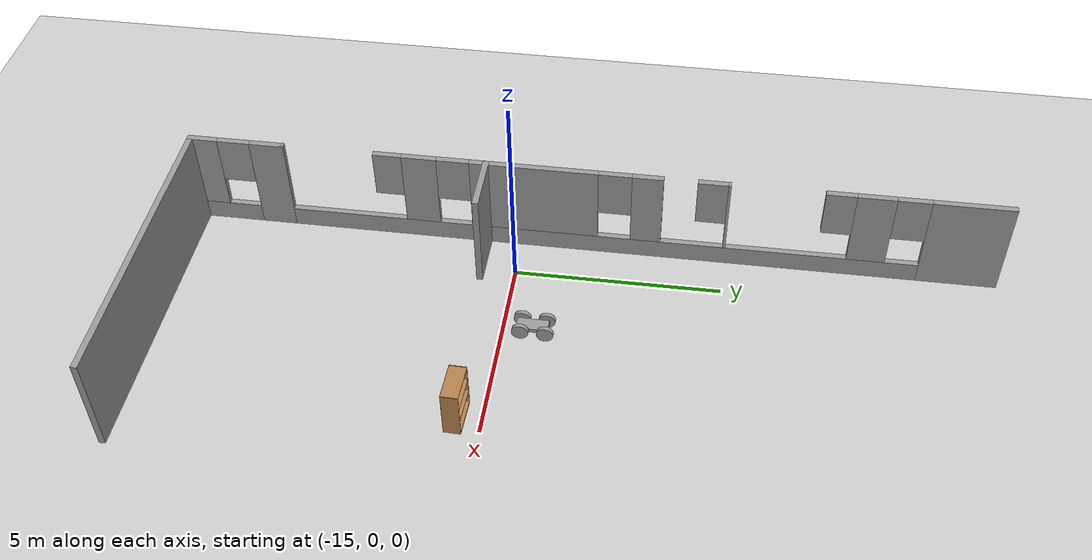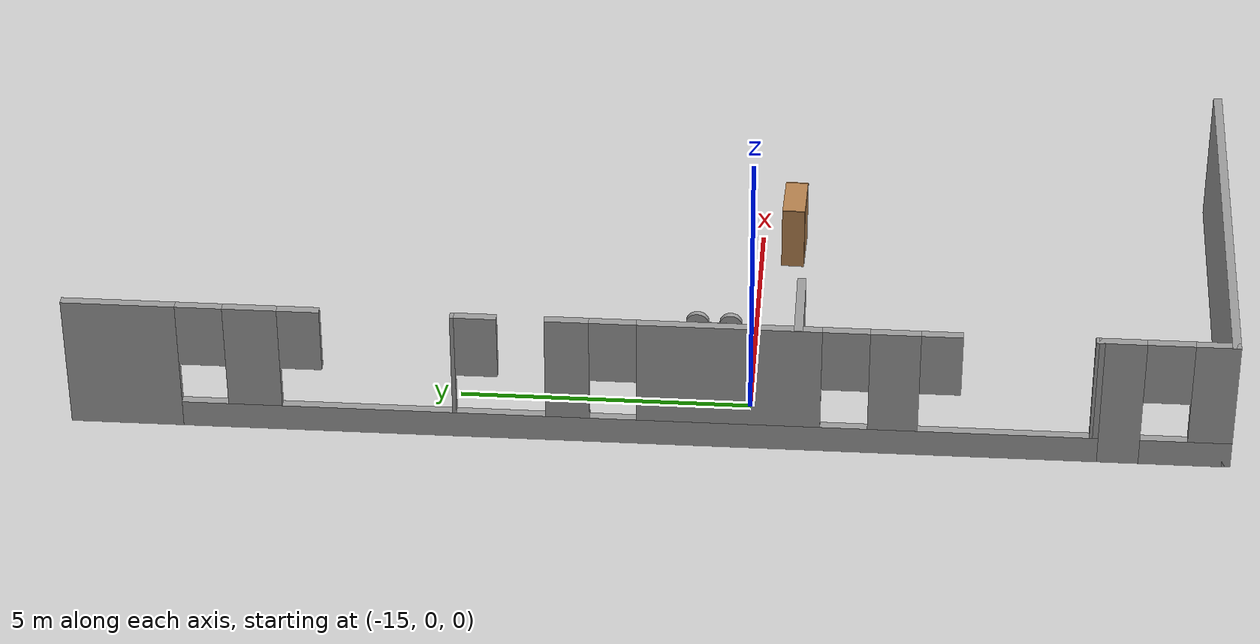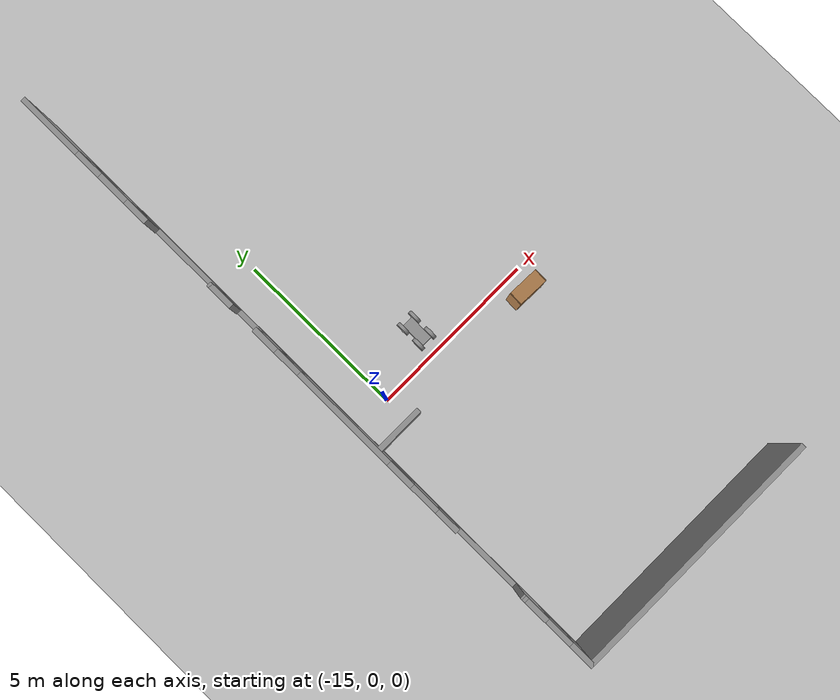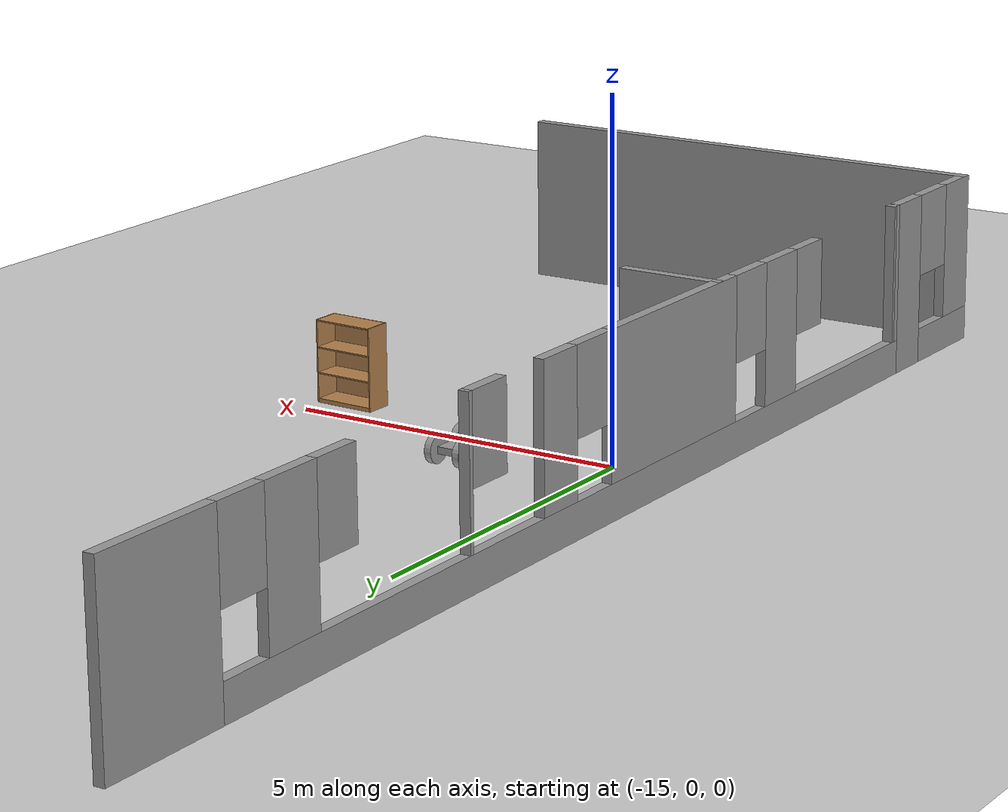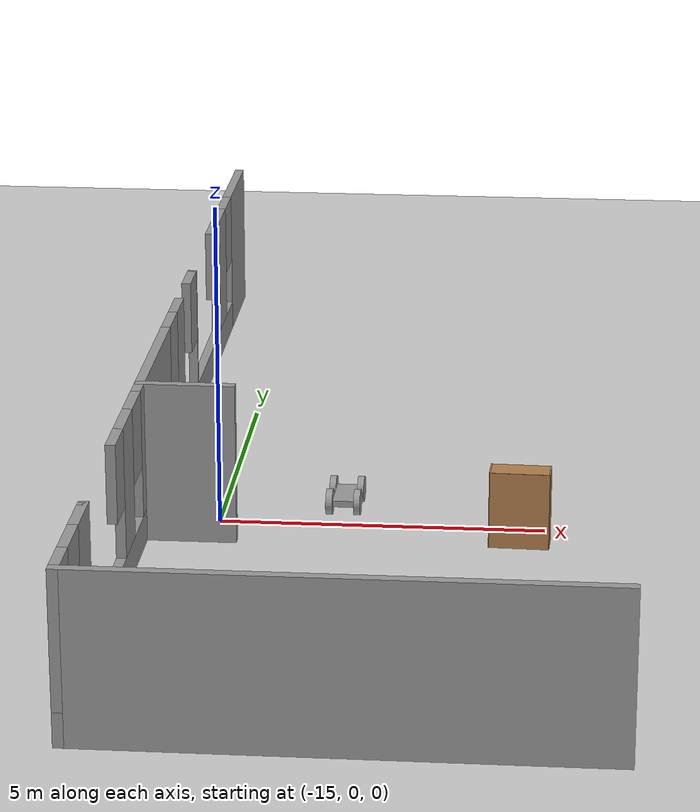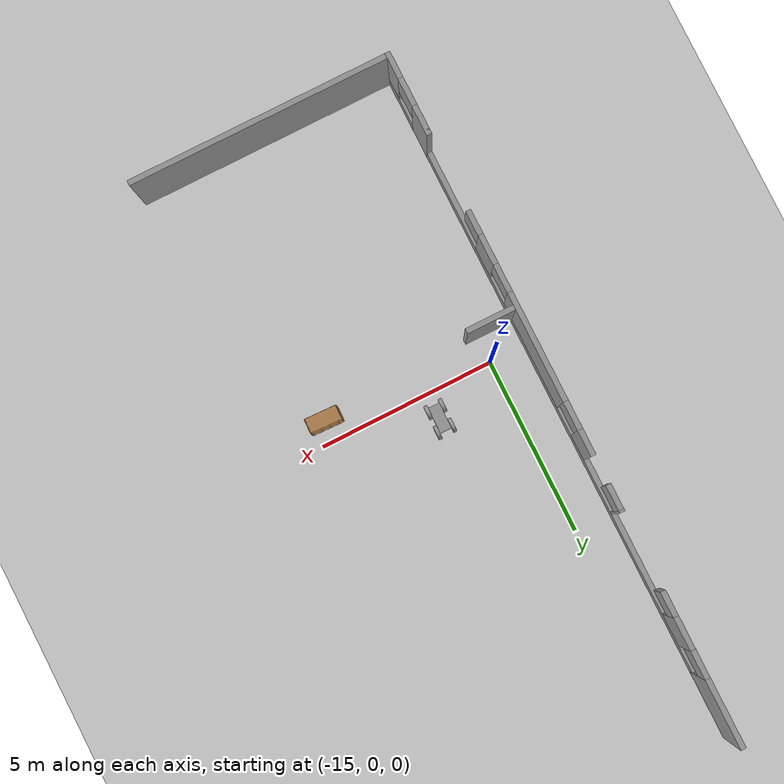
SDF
<sdf version="1.6">
 <world name="default">
  <model name="ground_plane">
   <static>1</static>
   <link name="link">
    <collision name="collision">
     <geometry><plane><normal>0 0 1</normal><size>100 100</size></plane></geometry>
     <surface>
      <contact><collide_bitmask>65535</collide_bitmask></contact>
      <friction><ode><mu>100</mu><mu2>50</mu2></ode></friction>
     </surface>
    </collision>
    <visual name="visual">
     <cast_shadows>0</cast_shadows>
     <geometry><plane><normal>0 0 1</normal><size>100 100</size></plane></geometry>
     <material>
      <script><uri>file://media/materials/scripts/gazebo.material</uri><name>Gazebo/Grey</name></script>
     </material>
    </visual>
   </link>
  </model>
  <model name="spruce1st">
   <pose>-3.08285 0.81707 0 0 -0 0</pose>
   <link name="Wall_116">
    <collision name="Wall_116_Collision">
     <geometry><box><size>1.5 0.15 2.5</size></box></geometry>
     <pose>0 0 1.25 0 -0 0</pose>
    </collision>
    <visual name="Wall_116_Visual">
     <pose>0 0 1.25 0 -0 0</pose>
     <geometry><box><size>1.5 0.15 2.5</size></box></geometry>
     <material>
      <script><uri>file://media/materials/scripts/gazebo.material</uri><name>Gazebo/Grey</name></script>
      <ambient>1 1 1 1</ambient>
     </material>
     <meta><layer>0</layer></meta>
    </visual>
    <pose>-12.3106 -1.63437 0 0 -0 0</pose>
   </link>
   <link name="Wall_124">
    <collision name="Wall_124_Collision">
     <geometry><box><size>7.5 0.15 2.5</size></box></geometry>
     <pose>0 0 1.25 0 -0 0</pose>
    </collision>
    <visual name="Wall_124_Visual">
     <pose>0 0 1.25 0 -0 0</pose>
     <geometry><box><size>7.5 0.15 2.5</size></box></geometry>
     <material>
      <script><uri>file://media/materials/scripts/gazebo.material</uri><name>Gazebo/Grey</name></script>
      <ambient>1 1 1 1</ambient>
     </material>
     <meta><layer>0</layer></meta>
    </visual>
    <pose>-9.3221 -8.89846 0 0 -0 0</pose>
   </link>
   <link name="Wall_37">
    <pose>-12.9971 2.0263 0 0 0 -1.5708</pose>
    <visual name="Wall_37_Visual_0">
     <pose>-7.78322 0 1.25 0 -0 0</pose>
     <geometry><box><size>1.93356 0.15 2.5</size></box></geometry>
     <material>
      <script><uri>file://media/materials/scripts/gazebo.material</uri><name>Gazebo/Grey</name></script>
      <ambient>1 1 1 1</ambient>
     </material>
     <meta><layer>0</layer></meta>
    </visual>
    <collision name="Wall_37_Collision_0">
     <geometry><box><size>1.93356 0.15 2.5</size></box></geometry>
     <pose>-7.78322 0 1.25 0 -0 0</pose>
    </collision>
    <visual name="Wall_37_Visual_1">
     <pose>0.966783 0 0.25 0 -0 0</pose>
     <geometry><box><size>15.5664 0.15 0.5</size></box></geometry>
     <material>
      <script><uri>file://media/materials/scripts/gazebo.material</uri><name>Gazebo/Grey</name></script>
      <ambient>1 1 1 1</ambient>
     </material>
     <meta><layer>0</layer></meta>
    </visual>
    <collision name="Wall_37_Collision_1">
     <geometry><box><size>15.5664 0.15 0.5</size></box></geometry>
     <pose>0.966783 0 0.25 0 -0 0</pose>
    </collision>
    <visual name="Wall_37_Visual_2">
     <pose>-5.55552 0 1.5 0 -0 0</pose>
     <geometry><box><size>0.921827 0.15 2</size></box></geometry>
     <material>
      <script><uri>file://media/materials/scripts/gazebo.material</uri><name>Gazebo/Grey</name></script>
      <ambient>1 1 1 1</ambient>
     </material>
     <meta><layer>0</layer></meta>
    </visual>
    <collision name="Wall_37_Collision_2">
     <geometry><box><size>0.921827 0.15 2</size></box></geometry>
     <pose>-5.55552 0 1.5 0 -0 0</pose>
    </collision>
    <visual name="Wall_37_Visual_3">
     <pose>-2.14673 0 1.5 0 -0 0</pose>
     <geometry><box><size>0.068166 0.15 2</size></box></geometry>
     <material>
      <script><uri>file://media/materials/scripts/gazebo.material</uri><name>Gazebo/Grey</name></script>
      <ambient>1 1 1 1</ambient>
     </material>
     <meta><layer>0</layer></meta>
    </visual>
    <collision name="Wall_37_Collision_3">
     <geometry><box><size>0.068166 0.15 2</size></box></geometry>
     <pose>-2.14673 0 1.5 0 -0 0</pose>
    </collision>
    <visual name="Wall_37_Visual_4">
     <pose>-0.221666 0 1.5 0 -0 0</pose>
     <geometry><box><size>0.7476 0.15 2</size></box></geometry>
     <material>
      <script><uri>file://media/materials/scripts/gazebo.material</uri><name>Gazebo/Grey</name></script>
      <ambient>1 1 1 1</ambient>
     </material>
     <meta><layer>0</layer></meta>
    </visual>
    <collision name="Wall_37_Collision_4">
     <geometry><box><size>0.7476 0.15 2</size></box></geometry>
     <pose>-0.221666 0 1.5 0 -0 0</pose>
    </collision>
    <visual name="Wall_37_Visual_5">
     <pose>2.50576 0 1.5 0 -0 0</pose>
     <geometry><box><size>3.10725 0.15 2</size></box></geometry>
     <material>
      <script><uri>file://media/materials/scripts/gazebo.material</uri><name>Gazebo/Grey</name></script>
      <ambient>1 1 1 1</ambient>
     </material>
     <meta><layer>0</layer></meta>
    </visual>
    <collision name="Wall_37_Collision_5">
     <geometry><box><size>3.10725 0.15 2</size></box></geometry>
     <pose>2.50576 0 1.5 0 -0 0</pose>
    </collision>
    <visual name="Wall_37_Visual_6">
     <pose>5.28306 0 1.5 0 -0 0</pose>
     <geometry><box><size>0.847345 0.15 2</size></box></geometry>
     <material>
      <script><uri>file://media/materials/scripts/gazebo.material</uri><name>Gazebo/Grey</name></script>
      <ambient>1 1 1 1</ambient>
     </material>
     <meta><layer>0</layer></meta>
    </visual>
    <collision name="Wall_37_Collision_6">
     <geometry><box><size>0.847345 0.15 2</size></box></geometry>
     <pose>5.28306 0 1.5 0 -0 0</pose>
    </collision>
    <visual name="Wall_37_Visual_7">
     <pose>8.70164 0 1.5 0 -0 0</pose>
     <geometry><box><size>0.096727 0.15 2</size></box></geometry>
     <material>
      <script><uri>file://media/materials/scripts/gazebo.material</uri><name>Gazebo/Grey</name></script>
      <ambient>1 1 1 1</ambient>
     </material>
     <meta><layer>0</layer></meta>
    </visual>
    <collision name="Wall_37_Collision_7">
     <geometry><box><size>0.096727 0.15 2</size></box></geometry>
     <pose>8.70164 0 1.5 0 -0 0</pose>
    </collision>
    <visual name="Wall_37_Visual_8">
     <pose>-6.41643 0 1.9 0 -0 0</pose>
     <geometry><box><size>0.8 0.15 1.2</size></box></geometry>
     <material>
      <script><uri>file://media/materials/scripts/gazebo.material</uri><name>Gazebo/Grey</name></script>
      <ambient>1 1 1 1</ambient>
     </material>
     <meta><layer>0</layer></meta>
    </visual>
    <collision name="Wall_37_Collision_8">
     <geometry><box><size>0.8 0.15 1.2</size></box></geometry>
     <pose>-6.41643 0 1.9 0 -0 0</pose>
    </collision>
    <visual name="Wall_37_Visual_9">
     <pose>-4.73602 0 1.9 0 -0 0</pose>
     <geometry><box><size>0.71718 0.15 1.2</size></box></geometry>
     <material>
      <script><uri>file://media/materials/scripts/gazebo.material</uri><name>Gazebo/Grey</name></script>
      <ambient>1 1 1 1</ambient>
     </material>
     <meta><layer>0</layer></meta>
    </visual>
    <collision name="Wall_37_Collision_9">
     <geometry><box><size>0.71718 0.15 1.2</size></box></geometry>
     <pose>-4.73602 0 1.9 0 -0 0</pose>
    </collision>
    <visual name="Wall_37_Visual_10">
     <pose>-1.75406 0 1.9 0 -0 0</pose>
     <geometry><box><size>0.717181 0.15 1.2</size></box></geometry>
     <material>
      <script><uri>file://media/materials/scripts/gazebo.material</uri><name>Gazebo/Grey</name></script>
      <ambient>1 1 1 1</ambient>
     </material>
     <meta><layer>0</layer></meta>
    </visual>
    <collision name="Wall_37_Collision_10">
     <geometry><box><size>0.717181 0.15 1.2</size></box></geometry>
     <pose>-1.75406 0 1.9 0 -0 0</pose>
    </collision>
    <visual name="Wall_37_Visual_11">
     <pose>0.552134 0 1.9 0 -0 0</pose>
     <geometry><box><size>0.8 0.15 1.2</size></box></geometry>
     <material>
      <script><uri>file://media/materials/scripts/gazebo.material</uri><name>Gazebo/Grey</name></script>
      <ambient>1 1 1 1</ambient>
     </material>
     <meta><layer>0</layer></meta>
    </visual>
    <collision name="Wall_37_Collision_11">
     <geometry><box><size>0.8 0.15 1.2</size></box></geometry>
     <pose>0.552134 0 1.9 0 -0 0</pose>
    </collision>
    <visual name="Wall_37_Visual_12">
     <pose>4.45939 0 1.9 0 -0 0</pose>
     <geometry><box><size>0.8 0.15 1.2</size></box></geometry>
     <material>
      <script><uri>file://media/materials/scripts/gazebo.material</uri><name>Gazebo/Grey</name></script>
      <ambient>1 1 1 1</ambient>
     </material>
     <meta><layer>0</layer></meta>
    </visual>
    <collision name="Wall_37_Collision_12">
     <geometry><box><size>0.8 0.15 1.2</size></box></geometry>
     <pose>4.45939 0 1.9 0 -0 0</pose>
    </collision>
    <visual name="Wall_37_Visual_13">
     <pose>6.05617 0 1.9 0 -0 0</pose>
     <geometry><box><size>0.698874 0.15 1.2</size></box></geometry>
     <material>
      <script><uri>file://media/materials/scripts/gazebo.material</uri><name>Gazebo/Grey</name></script>
      <ambient>1 1 1 1</ambient>
     </material>
     <meta><layer>0</layer></meta>
    </visual>
    <collision name="Wall_37_Collision_13">
     <geometry><box><size>0.698874 0.15 1.2</size></box></geometry>
     <pose>6.05617 0 1.9 0 -0 0</pose>
    </collision>
   </link>
   <link name="Wall_38">
    <pose>-12.9971 -7.77358 0 0 0 -1.5708</pose>
    <visual name="Wall_38_Visual_0">
     <pose>-0.774668 0 1.25 0 -0 0</pose>
     <geometry><box><size>0.850976 0.15 2.5</size></box></geometry>
     <material>
      <script><uri>file://media/materials/scripts/gazebo.material</uri><name>Gazebo/Grey</name></script>
      <ambient>1 1 1 1</ambient>
     </material>
     <meta><layer>0</layer></meta>
    </visual>
    <collision name="Wall_38_Collision_0">
     <geometry><box><size>0.850976 0.15 2.5</size></box></geometry>
     <pose>-0.774668 0 1.25 0 -0 0</pose>
    </collision>
    <visual name="Wall_38_Visual_1">
     <pose>0.425488 0 0.25 0 -0 0</pose>
     <geometry><box><size>1.54934 0.15 0.5</size></box></geometry>
     <material>
      <script><uri>file://media/materials/scripts/gazebo.material</uri><name>Gazebo/Grey</name></script>
      <ambient>1 1 1 1</ambient>
     </material>
     <meta><layer>0</layer></meta>
    </visual>
    <collision name="Wall_38_Collision_1">
     <geometry><box><size>1.54934 0.15 0.5</size></box></geometry>
     <pose>0.425488 0 0.25 0 -0 0</pose>
    </collision>
    <visual name="Wall_38_Visual_2">
     <pose>0.825488 0 1.5 0 -0 0</pose>
     <geometry><box><size>0.749337 0.15 2</size></box></geometry>
     <material>
      <script><uri>file://media/materials/scripts/gazebo.material</uri><name>Gazebo/Grey</name></script>
      <ambient>1 1 1 1</ambient>
     </material>
     <meta><layer>0</layer></meta>
    </visual>
    <collision name="Wall_38_Collision_2">
     <geometry><box><size>0.749337 0.15 2</size></box></geometry>
     <pose>0.825488 0 1.5 0 -0 0</pose>
    </collision>
    <visual name="Wall_38_Visual_3">
     <pose>0.050819 0 1.9 0 -0 0</pose>
     <geometry><box><size>0.8 0.15 1.2</size></box></geometry>
     <material>
      <script><uri>file://media/materials/scripts/gazebo.material</uri><name>Gazebo/Grey</name></script>
      <ambient>1 1 1 1</ambient>
     </material>
     <meta><layer>0</layer></meta>
    </visual>
    <collision name="Wall_38_Collision_3">
     <geometry><box><size>0.8 0.15 1.2</size></box></geometry>
     <pose>0.050819 0 1.9 0 -0 0</pose>
    </collision>
   </link>
   <static>1</static>
  </model>
  <model name="bookshelf_clone_3">
   <static>1</static>
   <link name="link">
    <inertial><mass>1</mass></inertial>
    <collision name="back">
     <pose>0 0.005 0.6 0 -0 0</pose>
     <geometry><box><size>0.9 0.01 1.2</size></box></geometry>
    </collision>
    <visual name="visual1">
     <pose>0 0.005 0.6 0 -0 0</pose>
     <geometry><box><size>0.9 0.01 1.2</size></box></geometry>
     <material>
      <script><uri>file://media/materials/scripts/gazebo.material</uri><name>Gazebo/Wood</name></script>
     </material>
    </visual>
    <collision name="left_side">
     <pose>0.45 -0.195 0.6 0 -0 0</pose>
     <geometry><box><size>0.02 0.4 1.2</size></box></geometry>
    </collision>
    <visual name="visual2">
     <pose>0.45 -0.195 0.6 0 -0 0</pose>
     <geometry><box><size>0.02 0.4 1.2</size></box></geometry>
     <material>
      <script><uri>file://media/materials/scripts/gazebo.material</uri><name>Gazebo/Wood</name></script>
     </material>
    </visual>
    <collision name="right_side">
     <pose>-0.45 -0.195 0.6 0 -0 0</pose>
     <geometry><box><size>0.02 0.4 1.2</size></box></geometry>
    </collision>
    <visual name="visual3">
     <pose>-0.45 -0.195 0.6 0 -0 0</pose>
     <geometry><box><size>0.02 0.4 1.2</size></box></geometry>
     <material>
      <script><uri>file://media/materials/scripts/gazebo.material</uri><name>Gazebo/Wood</name></script>
     </material>
    </visual>
    <collision name="bottom">
     <pose>0 -0.195 0.03 0 -0 0</pose>
     <geometry><box><size>0.88 0.4 0.06</size></box></geometry>
    </collision>
    <visual name="visual4">
     <pose>0 -0.195 0.03 0 -0 0</pose>
     <geometry><box><size>0.88 0.4 0.06</size></box></geometry>
     <material>
      <script><uri>file://media/materials/scripts/gazebo.material</uri><name>Gazebo/Wood</name></script>
     </material>
    </visual>
    <collision name="top">
     <pose>0 -0.195 1.19 0 -0 0</pose>
     <geometry><box><size>0.88 0.4 0.02</size></box></geometry>
    </collision>
    <visual name="visual5">
     <pose>0 -0.195 1.19 0 -0 0</pose>
     <geometry><box><size>0.88 0.4 0.02</size></box></geometry>
     <material>
      <script><uri>file://media/materials/scripts/gazebo.material</uri><name>Gazebo/Wood</name></script>
     </material>
    </visual>
    <collision name="low_shelf">
     <pose>0 -0.195 0.43 0 -0 0</pose>
     <geometry><box><size>0.88 0.4 0.02</size></box></geometry>
    </collision>
    <visual name="visual6">
     <pose>0 -0.195 0.43 0 -0 0</pose>
     <geometry><box><size>0.88 0.4 0.02</size></box></geometry>
     <material>
      <script><uri>file://media/materials/scripts/gazebo.material</uri><name>Gazebo/Wood</name></script>
     </material>
    </visual>
    <collision name="high_shelf">
     <pose>0 -0.195 0.8 0 -0 0</pose>
     <geometry><box><size>0.88 0.4 0.02</size></box></geometry>
    </collision>
    <visual name="visual7">
     <pose>0 -0.195 0.8 0 -0 0</pose>
     <geometry><box><size>0.88 0.4 0.02</size></box></geometry>
     <material>
      <script><uri>file://media/materials/scripts/gazebo.material</uri><name>Gazebo/Wood</name></script>
     </material>
    </visual>
   </link>
   <pose>-10.3801 -0.761902 0 0 -0 3.10867</pose>
  </model>
  <model name="little_car">
   <link name="link_0">
    <pose>-0.000514 -0.021001 0 0 -0 0</pose>
    <inertial>
     <mass>1</mass>
     <inertia>
      <ixx>0.166667</ixx>
      <ixy>0</ixy>
      <ixz>0</ixz>
      <iyy>0.166667</iyy>
      <iyz>0</iyz>
      <izz>0.166667</izz>
     </inertia>
    </inertial>
    <visual name="visual">
     <geometry><box><size>0.33 0.75 0.1</size></box></geometry>
     <material>
      <lighting>1</lighting>
      <script><uri>file://media/materials/scripts/gazebo.material</uri><name>Gazebo/Grey</name></script>
      <shader type="pixel"><normal_map>__default__</normal_map></shader>
      <ambient>0.3 0.3 0.3 1</ambient>
      <diffuse>0.7 0.7 0.7 1</diffuse>
      <specular>0.01 0.01 0.01 1</specular>
      <emissive>0 0 0 1</emissive>
     </material>
    </visual>
    <collision name="collision">
     <geometry><box><size>0.33 0.75 0.1</size></box></geometry>
     <surface>
      <friction>
       <ode><mu>1</mu><mu2>1</mu2><fdir1>0 0 0</fdir1><slip1>0</slip1><slip2>0</slip2></ode>
       <torsional>
        <coefficient>1</coefficient>
        <patch_radius>0</patch_radius>
        <surface_radius>0</surface_radius>
        <use_patch_radius>1</use_patch_radius>
        <ode><slip>0</slip></ode>
       </torsional>
      </friction>
      <bounce><restitution_coefficient>0</restitution_coefficient><threshold>1e+06</threshold></bounce>
      <contact>
       <collide_without_contact>0</collide_without_contact>
       <collide_without_contact_bitmask>1</collide_without_contact_bitmask>
       <collide_bitmask>1</collide_bitmask>
       <ode>
        <soft_cfm>0</soft_cfm>
        <soft_erp>0.2</soft_erp>
        <kp>1e+13</kp>
        <kd>1</kd>
        <max_vel>0.01</max_vel>
        <min_depth>0</min_depth>
       </ode>
       <bullet>
        <split_impulse>1</split_impulse>
        <split_impulse_penetration_threshold>-0.01</split_impulse_penetration_threshold>
        <soft_cfm>0</soft_cfm>
        <soft_erp>0.2</soft_erp>
        <kp>1e+13</kp>
        <kd>1</kd>
       </bullet>
      </contact>
     </surface>
    </collision>
   </link>
   <link name="link_1">
    <pose>-0.215576 -0.292883 0 0 -0 0</pose>
    <inertial>
     <mass>1</mass>
     <inertia><ixx>0.145833</ixx><ixy>0</ixy><ixz>0</ixz><iyy>0.145833</iyy><iyz>0</iyz><izz>0.125</izz></inertia>
    </inertial>
    <visual name="visual">
     <pose>0 0 0 -1.5708 1.57079 -1.5708</pose>
     <geometry><cylinder><radius>0.2</radius><length>0.1</length></cylinder></geometry>
     <material>
      <lighting>1</lighting>
      <script><uri>file://media/materials/scripts/gazebo.material</uri><name>Gazebo/Grey</name></script>
      <shader type="pixel"><normal_map>__default__</normal_map></shader>
      <ambient>0.3 0.3 0.3 1</ambient>
      <diffuse>0.7 0.7 0.7 1</diffuse>
      <specular>0.01 0.01 0.01 1</specular>
      <emissive>0 0 0 1</emissive>
     </material>
    </visual>
    <collision name="collision">
     <pose>0 0 0 1.5708 -0 1.5708</pose>
     <geometry><cylinder><radius>0.2</radius><length>0.1</length></cylinder></geometry>
     <surface>
      <friction>
       <ode><mu>1</mu><mu2>1</mu2><fdir1>0 0 0</fdir1><slip1>0</slip1><slip2>0</slip2></ode>
       <torsional>
        <coefficient>1</coefficient>
        <patch_radius>0</patch_radius>
        <surface_radius>0</surface_radius>
        <use_patch_radius>1</use_patch_radius>
        <ode><slip>0</slip></ode>
       </torsional>
      </friction>
      <bounce><restitution_coefficient>0</restitution_coefficient><threshold>1e+06</threshold></bounce>
      <contact>
       <collide_without_contact>0</collide_without_contact>
       <collide_without_contact_bitmask>1</collide_without_contact_bitmask>
       <collide_bitmask>1</collide_bitmask>
       <ode>
        <soft_cfm>0</soft_cfm>
        <soft_erp>0.2</soft_erp>
        <kp>1e+13</kp>
        <kd>1</kd>
        <max_vel>0.01</max_vel>
        <min_depth>0</min_depth>
       </ode>
       <bullet>
        <split_impulse>1</split_impulse>
        <split_impulse_penetration_threshold>-0.01</split_impulse_penetration_threshold>
        <soft_cfm>0</soft_cfm>
        <soft_erp>0.2</soft_erp>
        <kp>1e+13</kp>
        <kd>1</kd>
       </bullet>
      </contact>
     </surface>
    </collision>
   </link>
   <link name="link_1_clone">
    <pose>0.213919 -0.284097 0 0 -0 0</pose>
    <inertial>
     <mass>1</mass>
     <inertia><ixx>0.145833</ixx><ixy>0</ixy><ixz>0</ixz><iyy>0.145833</iyy><iyz>0</iyz><izz>0.125</izz></inertia>
    </inertial>
    <visual name="visual">
     <pose>0 0 0 -1.5708 1.57079 -1.5708</pose>
     <geometry><cylinder><radius>0.2</radius><length>0.1</length></cylinder></geometry>
     <material>
      <lighting>1</lighting>
      <script><uri>file://media/materials/scripts/gazebo.material</uri><name>Gazebo/Grey</name></script>
      <shader type="pixel"><normal_map>__default__</normal_map></shader>
      <ambient>0.3 0.3 0.3 1</ambient>
      <diffuse>0.7 0.7 0.7 1</diffuse>
      <specular>0.01 0.01 0.01 1</specular>
      <emissive>0 0 0 1</emissive>
     </material>
    </visual>
    <collision name="collision">
     <pose>0 0 0 1.5708 -0 1.5708</pose>
     <geometry><cylinder><radius>0.2</radius><length>0.1</length></cylinder></geometry>
     <surface>
      <friction>
       <ode><mu>1</mu><mu2>1</mu2><fdir1>0 0 0</fdir1><slip1>0</slip1><slip2>0</slip2></ode>
       <torsional>
        <coefficient>1</coefficient>
        <patch_radius>0</patch_radius>
        <surface_radius>0</surface_radius>
        <use_patch_radius>1</use_patch_radius>
        <ode><slip>0</slip></ode>
       </torsional>
      </friction>
      <bounce><restitution_coefficient>0</restitution_coefficient><threshold>1e+06</threshold></bounce>
      <contact>
       <collide_without_contact>0</collide_without_contact>
       <collide_without_contact_bitmask>1</collide_without_contact_bitmask>
       <collide_bitmask>1</collide_bitmask>
       <ode>
        <soft_cfm>0</soft_cfm>
        <soft_erp>0.2</soft_erp>
        <kp>1e+13</kp>
        <kd>1</kd>
        <max_vel>0.01</max_vel>
        <min_depth>0</min_depth>
       </ode>
       <bullet>
        <split_impulse>1</split_impulse>
        <split_impulse_penetration_threshold>-0.01</split_impulse_penetration_threshold>
        <soft_cfm>0</soft_cfm>
        <soft_erp>0.2</soft_erp>
        <kp>1e+13</kp>
        <kd>1</kd>
       </bullet>
      </contact>
     </surface>
    </collision>
   </link>
   <link name="link_1_clone_0">
    <pose>-0.215854 0.292335 0 0 -0 0</pose>
    <inertial>
     <mass>1</mass>
     <inertia><ixx>0.145833</ixx><ixy>0</ixy><ixz>0</ixz><iyy>0.145833</iyy><iyz>0</iyz><izz>0.125</izz></inertia>
    </inertial>
    <visual name="visual">
     <pose>0 0 0 -1.5708 1.57079 -1.5708</pose>
     <geometry><cylinder><radius>0.2</radius><length>0.1</length></cylinder></geometry>
     <material>
      <lighting>1</lighting>
      <script><uri>file://media/materials/scripts/gazebo.material</uri><name>Gazebo/Grey</name></script>
      <shader type="pixel"><normal_map>__default__</normal_map></shader>
      <ambient>0.3 0.3 0.3 1</ambient>
      <diffuse>0.7 0.7 0.7 1</diffuse>
      <specular>0.01 0.01 0.01 1</specular>
      <emissive>0 0 0 1</emissive>
     </material>
    </visual>
    <collision name="collision">
     <pose>0 0 0 1.5708 -0 1.5708</pose>
     <geometry><cylinder><radius>0.2</radius><length>0.1</length></cylinder></geometry>
     <surface>
      <friction>
       <ode><mu>1</mu><mu2>1</mu2><fdir1>0 0 0</fdir1><slip1>0</slip1><slip2>0</slip2></ode>
       <torsional>
        <coefficient>1</coefficient>
        <patch_radius>0</patch_radius>
        <surface_radius>0</surface_radius>
        <use_patch_radius>1</use_patch_radius>
        <ode><slip>0</slip></ode>
       </torsional>
      </friction>
      <bounce><restitution_coefficient>0</restitution_coefficient><threshold>1e+06</threshold></bounce>
      <contact>
       <collide_without_contact>0</collide_without_contact>
       <collide_without_contact_bitmask>1</collide_without_contact_bitmask>
       <collide_bitmask>1</collide_bitmask>
       <ode>
        <soft_cfm>0</soft_cfm>
        <soft_erp>0.2</soft_erp>
        <kp>1e+13</kp>
        <kd>1</kd>
        <max_vel>0.01</max_vel>
        <min_depth>0</min_depth>
       </ode>
       <bullet>
        <split_impulse>1</split_impulse>
        <split_impulse_penetration_threshold>-0.01</split_impulse_penetration_threshold>
        <soft_cfm>0</soft_cfm>
        <soft_erp>0.2</soft_erp>
        <kp>1e+13</kp>
        <kd>1</kd>
       </bullet>
      </contact>
     </surface>
    </collision>
   </link>
   <link name="link_1_clone_1">
    <pose>0.218025 0.305649 0 0 -0 0</pose>
    <inertial>
     <mass>1</mass>
     <inertia><ixx>0.145833</ixx><ixy>0</ixy><ixz>0</ixz><iyy>0.145833</iyy><iyz>0</iyz><izz>0.125</izz></inertia>
    </inertial>
    <visual name="visual">
     <pose>0 0 0 -1.5708 1.57079 -1.5708</pose>
     <geometry><cylinder><radius>0.2</radius><length>0.1</length></cylinder></geometry>
     <material>
      <lighting>1</lighting>
      <script><uri>file://media/materials/scripts/gazebo.material</uri><name>Gazebo/Grey</name></script>
      <shader type="pixel"><normal_map>__default__</normal_map></shader>
      <ambient>0.3 0.3 0.3 1</ambient>
      <diffuse>0.7 0.7 0.7 1</diffuse>
      <specular>0.01 0.01 0.01 1</specular>
      <emissive>0 0 0 1</emissive>
     </material>
    </visual>
    <collision name="collision">
     <pose>0 0 0 1.5708 -0 1.5708</pose>
     <geometry><cylinder><radius>0.2</radius><length>0.1</length></cylinder></geometry>
     <surface>
      <friction>
       <ode><mu>1</mu><mu2>1</mu2><fdir1>0 0 0</fdir1><slip1>0</slip1><slip2>0</slip2></ode>
       <torsional>
        <coefficient>1</coefficient>
        <patch_radius>0</patch_radius>
        <surface_radius>0</surface_radius>
        <use_patch_radius>1</use_patch_radius>
        <ode><slip>0</slip></ode>
       </torsional>
      </friction>
      <bounce><restitution_coefficient>0</restitution_coefficient><threshold>1e+06</threshold></bounce>
      <contact>
       <collide_without_contact>0</collide_without_contact>
       <collide_without_contact_bitmask>1</collide_without_contact_bitmask>
       <collide_bitmask>1</collide_bitmask>
       <ode>
        <soft_cfm>0</soft_cfm>
        <soft_erp>0.2</soft_erp>
        <kp>1e+13</kp>
        <kd>1</kd>
        <max_vel>0.01</max_vel>
        <min_depth>0</min_depth>
       </ode>
       <bullet>
        <split_impulse>1</split_impulse>
        <split_impulse_penetration_threshold>-0.01</split_impulse_penetration_threshold>
        <soft_cfm>0</soft_cfm>
        <soft_erp>0.2</soft_erp>
        <kp>1e+13</kp>
        <kd>1</kd>
       </bullet>
      </contact>
     </surface>
    </collision>
   </link>
   <joint name="link_0_JOINT_0" type="revolute">
    <parent>link_0</parent>
    <child>link_1_clone_1</child>
    <axis>
     <xyz>1 0 0</xyz>
     <use_parent_model_frame>0</use_parent_model_frame>
     <limit>
      <lower>-1.79769e+308</lower>
      <upper>1.79769e+308</upper>
      <effort>-1</effort>
      <velocity>-1</velocity>
     </limit>
     <dynamics>
      <spring_reference>0</spring_reference>
      <spring_stiffness>0</spring_stiffness>
      <damping>0</damping>
     </dynamics>
    </axis>
    <physics>
     <ode><limit><cfm>0</cfm><erp>0.2</erp></limit><suspension><cfm>0</cfm><erp>0.2</erp></suspension></ode>
    </physics>
   </joint>
   <joint name="link_0_JOINT_1" type="revolute">
    <parent>link_0</parent>
    <child>link_1_clone</child>
    <axis>
     <xyz>1 0 0</xyz>
     <use_parent_model_frame>0</use_parent_model_frame>
     <limit>
      <lower>-1.79769e+308</lower>
      <upper>1.79769e+308</upper>
      <effort>-1</effort>
      <velocity>-1</velocity>
     </limit>
     <dynamics>
      <spring_reference>0</spring_reference>
      <spring_stiffness>0</spring_stiffness>
      <damping>0</damping>
     </dynamics>
    </axis>
    <physics>
     <ode><limit><cfm>0</cfm><erp>0.2</erp></limit><suspension><cfm>0</cfm><erp>0.2</erp></suspension></ode>
    </physics>
   </joint>
   <joint name="link_0_JOINT_2" type="revolute">
    <parent>link_0</parent>
    <child>link_1_clone_0</child>
    <axis>
     <xyz>1 0 0</xyz>
     <use_parent_model_frame>0</use_parent_model_frame>
     <limit>
      <lower>-1.79769e+308</lower>
      <upper>1.79769e+308</upper>
      <effort>-1</effort>
      <velocity>-1</velocity>
     </limit>
     <dynamics>
      <spring_reference>0</spring_reference>
      <spring_stiffness>0</spring_stiffness>
      <damping>0</damping>
     </dynamics>
    </axis>
    <physics>
     <ode><limit><cfm>0</cfm><erp>0.2</erp></limit><suspension><cfm>0</cfm><erp>0.2</erp></suspension></ode>
    </physics>
   </joint>
   <joint name="link_0_JOINT_3" type="revolute">
    <parent>link_0</parent>
    <child>link_1</child>
    <axis>
     <xyz>1 0 0</xyz>
     <use_parent_model_frame>0</use_parent_model_frame>
     <limit>
      <lower>-1.79769e+308</lower>
      <upper>1.79769e+308</upper>
      <effort>-1</effort>
      <velocity>-1</velocity>
     </limit>
     <dynamics>
      <spring_reference>0</spring_reference>
      <spring_stiffness>0</spring_stiffness>
      <damping>0</damping>
     </dynamics>
    </axis>
    <physics>
     <ode><limit><cfm>0</cfm><erp>0.2</erp></limit><suspension><cfm>0</cfm><erp>0.2</erp></suspension></ode>
    </physics>
   </joint>
   <static>0</static>
   <pose>-13.1264 0.738726 0.2 1e-06 -1e-06 -0.015925</pose>
  </model>
 </world>
</sdf>
